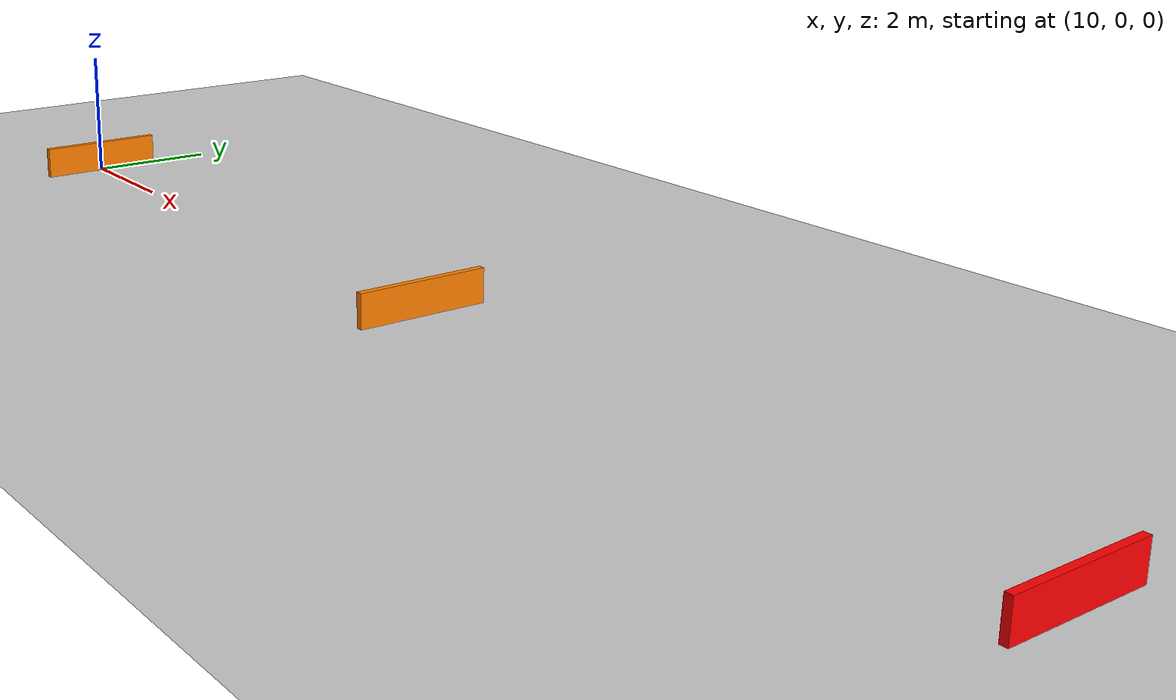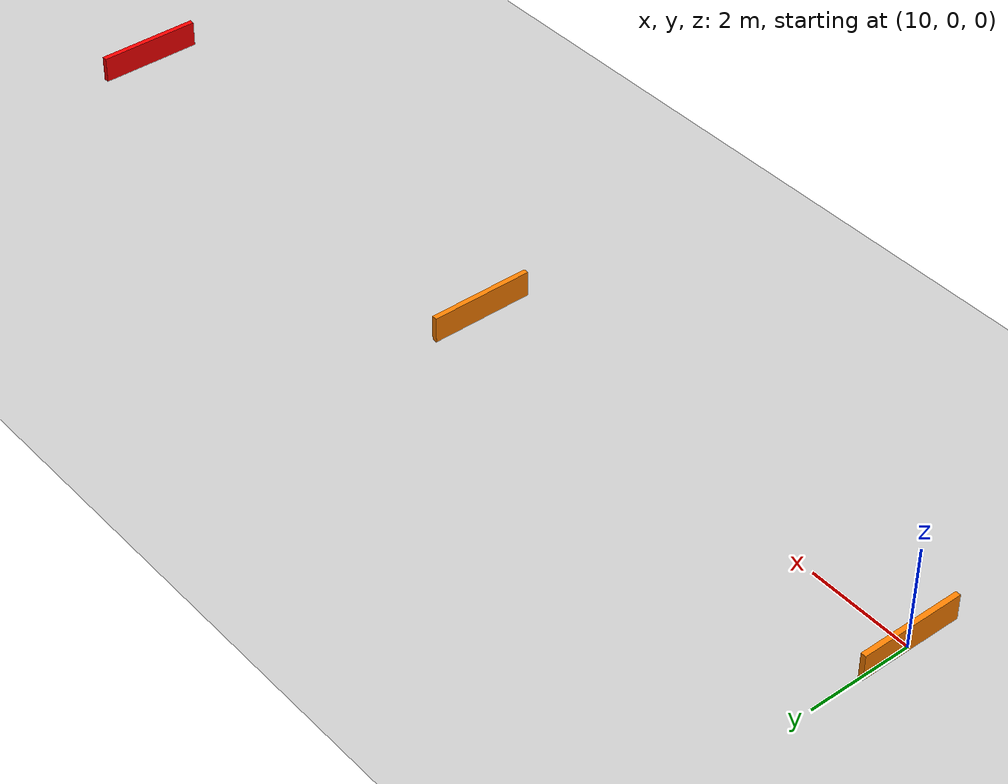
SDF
<?xml version="1.0"?>
<sdf version="1.8">
  <world name="e02_hizlanma">

    <plugin filename="gz-sim-physics-system" name="gz::sim::systems::Physics"></plugin>
    <plugin filename="gz-sim-sensors-system" name="gz::sim::systems::Sensors">
      <render_engine>ogre2</render_engine>
    </plugin>
    <plugin filename="gz-sim-scene-broadcaster-system" name="gz::sim::systems::SceneBroadcaster"></plugin>
    <plugin filename="gz-sim-user-commands-system" name="gz::sim::systems::UserCommands"></plugin>

    <light name="sun" type="directional">
      <cast_shadows>true</cast_shadows>
      <pose>0 0 10 0 0 0</pose>
      <diffuse>1 1 1 1</diffuse>
      <specular>0.5 0.5 0.5 1</specular>
      <direction>-0.5 0.1 -0.9</direction>
    </light>

    <model name="ground_plane">
      <static>true</static>
      <link name="link">
        <collision name="collision">
          <geometry><plane><normal>0 0 1</normal><size>200 100</size></plane></geometry>
        </collision>
        <visual name="visual">
          <geometry><plane><normal>0 0 1</normal><size>200 100</size></plane></geometry>
          <material><ambient>0.8 0.8 0.8 1</ambient></material>
        </visual>
      </link>
    </model>

    <!-- Mesafe işaretleri (her 10m) -->
    <model name="isaret_10m">
      <static>true</static>
      <pose>10 0 0.25 0 0 0</pose>
      <link name="link">
        <visual name="v"><pose>0 0 0 0 0 0</pose>
          <geometry><box><size>0.1 2.0 0.5</size></box></geometry>
          <material><ambient>1 0.5 0 1</ambient></material>
        </visual>
      </link>
    </model>
    <model name="isaret_20m">
      <static>true</static>
      <pose>20 0 0.25 0 0 0</pose>
      <link name="link">
        <visual name="v"><pose>0 0 0 0 0 0</pose>
          <geometry><box><size>0.1 2.0 0.5</size></box></geometry>
          <material><ambient>1 0.5 0 1</ambient></material>
        </visual>
      </link>
    </model>
    <model name="isaret_30m">
      <static>true</static>
      <pose>30 0 0.25 0 0 0</pose>
      <link name="link">
        <visual name="v"><pose>0 0 0 0 0 0</pose>
          <geometry><box><size>0.1 2.0 0.5</size></box></geometry>
          <material><ambient>1 0 0 1</ambient></material>
        </visual>
      </link>
    </model>

  </world>
</sdf>
